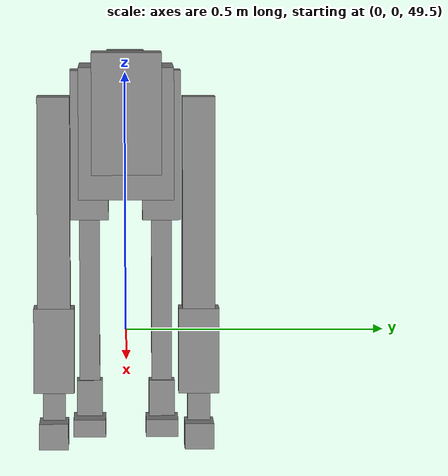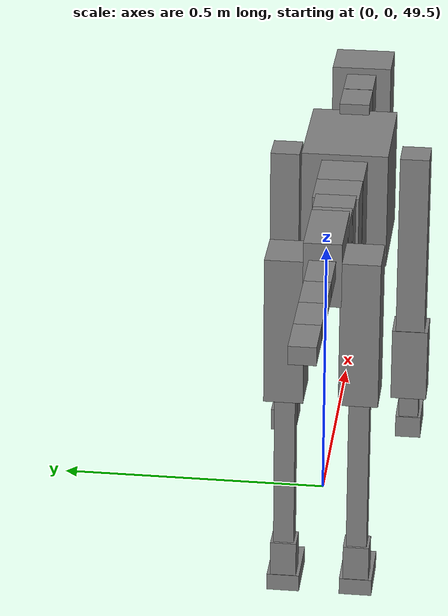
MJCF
<mujoco model="dog">

    <default>
        <joint armature="0.02" stiffness="1" damping="0.2" limited="true"/>
        <geom condim="3" friction="1 0.05 0.05" margin="0.01"/>
        <motor ctrllimited="true" ctrlrange="-1.0 1.0" forcelimited="true" gear="50"/>
    </default>

    <compiler inertiafromgeom="true" angle="radian"/>

    <option timestep="0.016" iterations="50" tolerance="1e-10" solver="Newton" jacobian="dense" cone="pyramidal"/>

    <size nconmax="20000" njmax="60000" nstack="5000000"/>
    <visual>
        <map force="0.1" zfar="30"/>
        <rgba haze="0.15 0.25 0.35 1"/>
        <quality shadowsize="2048"/>
        <global offwidth="800" offheight="800"/>
    </visual>

    <asset>
        <texture type="skybox" builtin="gradient" rgb1="0.3 0.5 0.7" rgb2="0 0 0" width="512" height="512"/>
        <texture name="texplane" type="2d" builtin="checker" rgb1=".2 .3 .4" rgb2=".1 0.15 0.2" width="512" height="512"
                 mark="cross" markrgb=".8 .8 .8"/>
        <texture name="texgeom" type="cube" builtin="flat" mark="cross" width="127" height="1278" rgb1="0.8 0.6 0.4"
                 rgb2="0.8 0.6 0.4" markrgb="1 1 1" random="0.01"/>

        <material name="matplane" reflectance="0.3" texture="texplane" texrepeat="1 1" texuniform="true"/>
        <material name="matgeom" texture="texgeom" texuniform="true" rgba="0.8 0.6 .4 1"/>
    </asset>

    <worldbody>
        <geom name="floor" pos="0 0 0" size="0 0 .25" type="plane" material="matplane" condim="3"/>

        <light directional="false" diffuse=".2 .2 .2" specular="0 0 0" pos="0 0 5" dir="0 0 -1" castshadow="false"/>
        <light mode="targetbodycom" target="torso" directional="false" diffuse=".8 .8 .8" specular="0.3 0.3 0.3"
               pos="0 0 4.0" dir="0 0 -1"/>

        <body name="root" pos="0 0 50">
            <freejoint name="root_1"/>
            <geom type="box" pos="0 0 -0.02" size="0.0774  0.0358  0.063" density="2030"/>

            <body name="spine1" pos="0.054 0 0">
                <joint name="spine1_y" axis="0 1 0" range="0 0.7" limited="true"/>
                <geom type="box" pos="0.02375 0 -0.03" size="0.04375  0.0375  0.05985" density="2030"/>

                <body name="spine2" pos="0.0612 0 0">
                    <joint name="spine2_y" axis="0 1 0" range="-0.15 0.15" limited="true"/>
                    <geom type="box" pos="0.03555  0  -0.04" size="0.04055  0.039  0.06615" density="2030"/>

                    <body name="spine3" pos="0.0730 0 0">
                        <joint name="spine3_y" axis="0 1 0" range="-0.15 0.15" limited="true"/>
                        <geom type="box" pos="0.03555  0  -0.057" size="0.04555  0.0445  0.081" density="2030"/>

                        <body name="spine4" pos="0.0780 0 0">
                            <joint name="spine4_y" axis="0 1 0" range="-0.15 0.15" limited="true"/>
                            <geom type="box" pos="0.05265  0  -0.07" size="0.05265  0.045  0.09135" density="2030"/>

                            <body name="torso" pos="0.1082 0 0">
                                <joint name="torso_y" axis="0 1 0" range="-0.15 0.15" limited="true"/>
                                <geom type="box" pos="0.11925  0  -0.085" size="0.11925  0.085  0.11745"
                                      density="2030"/>

                                <body name="neck1" pos="0.2160  0   0.0180">
                                    <joint name="neck1_y" axis="0 1 0" range="-1.2  -1" limited="true"/>
                                    <geom type="box" pos="0.0423  0  0" size="0.0423  0.03  0.036" density="2325"/>

                                    <body name="neck2" pos="0.0853  0  0">
                                        <joint name="neck2_y" axis="0 1 0" range="0.1  0" limited="true"/>
                                        <geom type="box" pos="0.0423  0  0" size="0.0423  0.03  0.036" density="2325"/>

                                        <body name="head" pos="0.0853  0  0">
                                            <joint name="head_y" axis="0 1 0" range="-0.3  -0.2" limited="true"/>
                                            <geom type="box" pos="0.0531  0  -0.055" size="0.0531  0.06  0.1044"
                                                  density="4030"/>

                                        </body>
                                    </body>
                                </body>

                                <body name="front_shoulder" pos="0.156  0   -0.0480">
                                    <joint name="front_shoulder_y" axis="0 1 0" range="-1 1.5" limited="true"/>
                                    <geom type="box" pos="0 0.13 -0.1766" size="0.0343  0.0293  0.2033" density="1158"/>
                                    <geom type="box" pos="0 -0.13 -0.1766" size="0.0343  0.0293  0.2033"
                                          density="1158"/>

                                    <body name="front_elbow" pos="0  0  -0.3532">
                                        <joint name="front_elbow_y" axis="0 1 0" range="-2 0" limited="true"/>
                                        <geom type="box" pos="0 0.13 -0.0762" size="0.0356  0.0364  0.0762"
                                              density="1081"/>
                                        <geom type="box" pos="0 -0.13 -0.0762" size="0.0356  0.0364  0.0762"
                                              density="1081"/>

                                        <body name="front_wrist" pos="0  0  -0.1524">
                                            <joint name="front_wrist_y" axis="0 1 0" range="-0.2 0" limited="true"/>
                                            <geom type="box" pos="0 0.13 -0.0326" size="0.0181  0.0201  0.0458"
                                                  density="1664"/>
                                            <geom type="box" pos="0 -0.13 -0.0326" size="0.0181  0.0201  0.0458"
                                                  density="1664"/>

                                            <body name="front_finger_end" pos="0  0  -0.0653">
                                                <joint name="front_finger_y" axis="0 1 0" range="-0.4 1"
                                                       limited="true"/>
                                                <geom type="box" pos="0.0259  0.13  -0.0080"
                                                      size="0.0476  0.0259  0.0230" density="1515"/>
                                                <geom type="box" pos="0.0259  -0.13  -0.0080"
                                                      size="0.0476  0.0259  0.0230" density="1515"/>

                                            </body>

                                        </body>
                                    </body>
                                </body>

                            </body>
                        </body>
                    </body>
                </body>
            </body>

            <body name="back_hip" pos="-0.03 0 -0.018">
                <joint name="back_hip_y" axis="0 1 0" range="-1.5 0.3" limited="true"/>
                <geom type="box" pos="0 0.07 -0.1220" size="0.0473  0.0371  0.1448" density="1154"/>
                <geom type="box" pos="0 -0.07 -0.1220" size="0.0473  0.0371  0.1448" density="1154"/>

                <body name="back_knee" pos="0  0  -0.2440">
                    <joint name="back_knee_y" axis="0 1 0" range="0 2.8" limited="true"/>
                    <geom type="box" pos="0 0.07 -0.1746" size="0.0199  0.0196  0.1901" density="1227"/>
                    <geom type="box" pos="0 -0.07 -0.1746" size="0.0199  0.0196  0.1901" density="1227"/>

                    <body name="back_ankle" pos="0  0  -0.3492">
                        <joint name="back_ankle_y" axis="0 1 0" range="-2.2 0" limited="true"/>
                        <geom type="box" pos="0 0.07 -0.0365" size="0.0248  0.0248  0.0478" density="1284"/>
                        <geom type="box" pos="0 -0.07 -0.0365" size="0.0248  0.0248  0.0478" density="1284"/>

                        <body name="back_toe_end" pos="0  0  -0.0730">
                            <joint name="back_toe_y" axis="0 1 0" range="-0.4 1" limited="true"/>
                            <geom type="box" pos="0.0311  0.07  -0.0017" size="0.0570  0.0311  0.0167" density="1515"/>
                            <geom type="box" pos="0.0311  -0.07  -0.0017" size="0.0570  0.0311  0.0167" density="1515"/>

                        </body>
                    </body>
                </body>
            </body>

            <body name="tail1" pos="-0.074 0 -0.006">
                <joint name="tail1_y" axis="0 1 0" range="-0.2 0.2" limited="true"/>
                <geom type="box" pos="-0.0536  0  0" size="0.045  0.025  0.0175" density="1587"/>

                <body name="tail2" pos="-0.09 0 0">
                    <joint name="tail2_y" axis="0 1 0" range="-0.2 0.2" limited="true"/>
                    <geom type="box" pos="-0.0536  0  0" size="0.045  0.025  0.0175" density="1587"/>

                    <body name="tail3" pos="-0.09 0 0">
                        <joint name="tail3_y" axis="0 1 0" range="-0.2 0.2" limited="true"/>
                        <geom type="box" pos="-0.0536  0  0" size="0.045  0.025  0.0175" density="1587"/>

                        <body name="tail4" pos="-0.09 0 0">
                            <joint name="tail4_y" axis="0 1 0" range="-0.2 0.2" limited="true"/>
                            <geom type="box" pos="-0.0536  0  0" size="0.045  0.025  0.0175" density="1587"/>

                        </body>
                    </body>
                </body>
            </body>
        </body>
    </worldbody>

    <actuator>
        <motor joint="spine1_y" forcerange="-150 150     "/>
        <motor joint="spine2_y" forcerange="-150 150     "/>
        <motor joint="spine3_y" forcerange="-150 150     "/>
        <motor joint="spine4_y" forcerange="-150 150     "/>
        <motor joint="torso_y" forcerange="-150 150     "/>
        <motor joint="neck1_y" forcerange="-100 100       "/>
        <motor joint="neck2_y" forcerange="-100 100       "/>
        <motor joint="head_y" forcerange="-150 150       "/>
        <motor joint="front_shoulder_y" forcerange="-158.21 137.19"/>
        <motor joint="front_elbow_y" forcerange="-193.56 170.95"/>
        <motor joint="front_wrist_y" forcerange="-81.24 79.59"/>
        <motor joint="front_finger_y" forcerange="-60.05 38.29"/>
        <motor joint="back_hip_y" forcerange="-357.17 337.58"/>
        <motor joint="back_knee_y" forcerange="-267.93 217.51"/>
        <motor joint="back_angle_y" forcerange="-228.35 67.93"/>
        <motor joint="back_toe_y" forcerange="-40.53 128.33"/>
        <motor joint="tail1_y" forcerange="-50 50     "/>
        <motor joint="tail2_y" forcerange="-50 50     "/>
        <motor joint="tail3_y" forcerange="-50 50     "/>
        <motor joint="tail4_y" forcerange="-50 50     "/>
    </actuator>
</mujoco>
